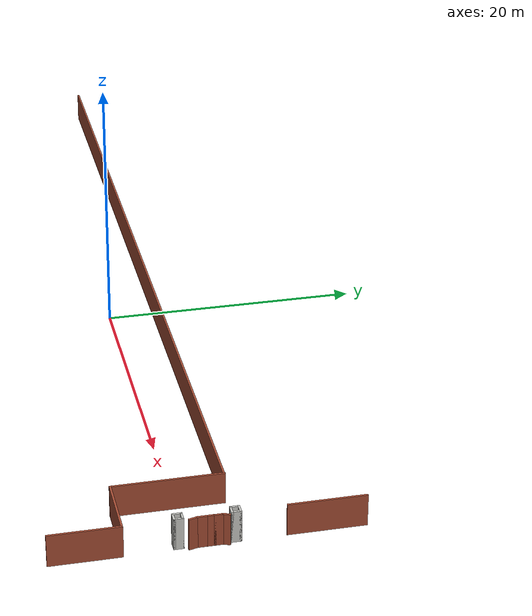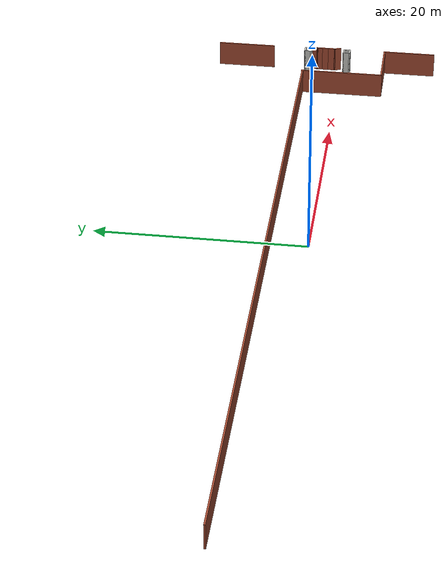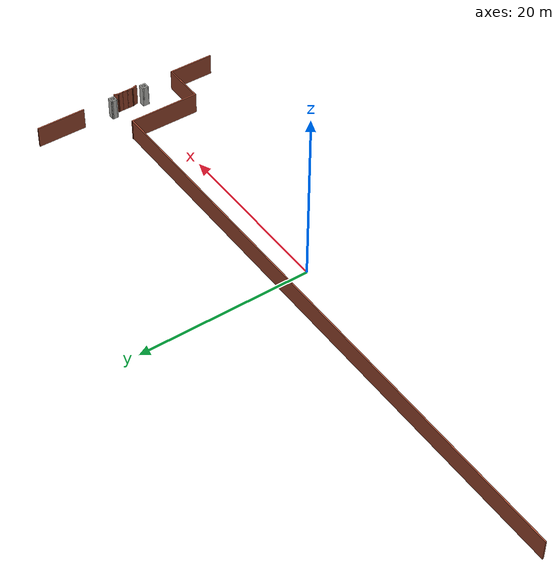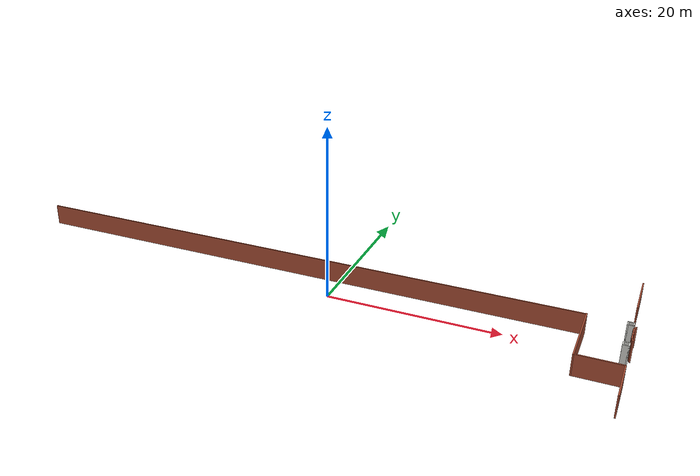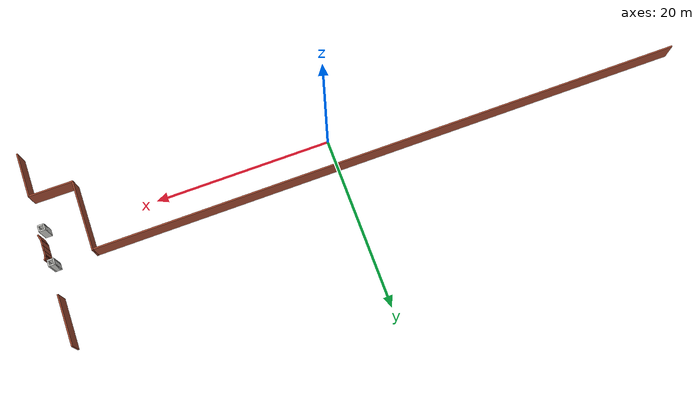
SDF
<sdf version="1.7">
 <model name="Planta1_TD">
  <pose>-6.73335 -7.75071 0 0 -0 0</pose>
  <link name="Wall_177">
   <collision name="Wall_177_Collision">
    <geometry><box><size>68 0.15 2.5</size></box></geometry>
    <pose>0 0 1.25 0 -0 0</pose>
   </collision>
   <visual name="Wall_177_Visual">
    <pose>0 0 1.25 0 -0 0</pose>
    <geometry><box><size>68 0.15 2.5</size></box></geometry>
    <material>
     <script><uri>file://media/materials/scripts/gazebo.material</uri><name>Gazebo/Bricks</name></script>
     <ambient>1 1 1 1</ambient>
    </material>
    <meta><layer>0</layer></meta>
   </visual>
   <pose>0.366626 11.3292 0 0 -0 0</pose>
  </link>
  <link name="Wall_179">
   <collision name="Wall_179_Collision">
    <geometry><box><size>8.25 0.15 2.5</size></box></geometry>
    <pose>0 0 1.25 0 -0 0</pose>
   </collision>
   <visual name="Wall_179_Visual">
    <pose>0 0 1.25 0 -0 0</pose>
    <geometry><box><size>8.25 0.15 2.5</size></box></geometry>
    <material>
     <script><uri>file://media/materials/scripts/gazebo.material</uri><name>Gazebo/Bricks</name></script>
     <ambient>1 1 1 1</ambient>
    </material>
    <meta><layer>0</layer></meta>
   </visual>
   <pose>34.4522 7.31198 0 0 -0 -1.5708</pose>
  </link>
  <link name="Wall_180">
   <collision name="Wall_180_Collision">
    <geometry><box><size>5 0.15 2.5</size></box></geometry>
    <pose>0 0 1.25 0 -0 0</pose>
   </collision>
   <visual name="Wall_180_Visual">
    <pose>0 0 1.25 0 -0 0</pose>
    <geometry><box><size>5 0.15 2.5</size></box></geometry>
    <material>
     <script><uri>file://media/materials/scripts/gazebo.material</uri><name>Gazebo/Bricks</name></script>
     <ambient>1 1 1 1</ambient>
    </material>
    <meta><layer>0</layer></meta>
   </visual>
   <pose>36.8772 3.26199 0 0 -0 0</pose>
  </link>
  <link name="Wall_181">
   <collision name="Wall_181_Collision">
    <geometry><box><size>5.25 0.15 2.5</size></box></geometry>
    <pose>0 0 1.25 0 -0 0</pose>
   </collision>
   <visual name="Wall_181_Visual">
    <pose>0 0 1.25 0 -0 0</pose>
    <geometry><box><size>5.25 0.15 2.5</size></box></geometry>
    <material>
     <script><uri>file://media/materials/scripts/gazebo.material</uri><name>Gazebo/Bricks</name></script>
     <ambient>1 1 1 1</ambient>
    </material>
    <meta><layer>0</layer></meta>
   </visual>
   <pose>39.3022 0.711985 0 0 -0 -1.5708</pose>
  </link>
  <link name="Wall_185">
   <collision name="Wall_185_Collision">
    <geometry><box><size>5.75 0.15 2.5</size></box></geometry>
    <pose>0 0 1.25 0 -0 0</pose>
   </collision>
   <visual name="Wall_185_Visual">
    <pose>0 0 1.25 0 -0 0</pose>
    <geometry><box><size>5.75 0.15 2.5</size></box></geometry>
    <material>
     <script><uri>file://media/materials/scripts/gazebo.material</uri><name>Gazebo/Bricks</name></script>
     <ambient>1 1 1 1</ambient>
    </material>
    <meta><layer>0</layer></meta>
   </visual>
   <pose>39.1365 17.6264 0 0 -0 -1.5708</pose>
  </link>
  <link name="Wall_259">
   <collision name="Wall_259_Collision">
    <geometry><box><size>0.75 0.15 2.5</size></box></geometry>
    <pose>0 0 1.25 0 -0 0</pose>
   </collision>
   <visual name="Wall_259_Visual">
    <pose>0 0 1.25 0 -0 0</pose>
    <geometry><box><size>0.75 0.15 2.5</size></box></geometry>
    <material>
     <script><uri>file://media/materials/scripts/gazebo.material</uri><name>Gazebo/CeilingTiled</name></script>
     <ambient>1 1 1 1</ambient>
    </material>
    <meta><layer>0</layer></meta>
   </visual>
   <pose>38.8926 11.485 0 0 -0 0</pose>
  </link>
  <link name="Wall_260">
   <collision name="Wall_260_Collision">
    <geometry><box><size>0.75 0.15 2.5</size></box></geometry>
    <pose>0 0 1.25 0 -0 0</pose>
   </collision>
   <visual name="Wall_260_Visual">
    <pose>0 0 1.25 0 -0 0</pose>
    <geometry><box><size>0.75 0.15 2.5</size></box></geometry>
    <material>
     <script><uri>file://media/materials/scripts/gazebo.material</uri><name>Gazebo/CeilingTiled</name></script>
     <ambient>1 1 1 1</ambient>
    </material>
    <meta><layer>0</layer></meta>
   </visual>
   <pose>39.1926 11.185 0 0 -0 -1.5708</pose>
  </link>
  <link name="Wall_261">
   <collision name="Wall_261_Collision">
    <geometry><box><size>0.75 0.15 2.5</size></box></geometry>
    <pose>0 0 1.25 0 -0 0</pose>
   </collision>
   <visual name="Wall_261_Visual">
    <pose>0 0 1.25 0 -0 0</pose>
    <geometry><box><size>0.75 0.15 2.5</size></box></geometry>
    <material>
     <script><uri>file://media/materials/scripts/gazebo.material</uri><name>Gazebo/CeilingTiled</name></script>
     <ambient>1 1 1 1</ambient>
    </material>
    <meta><layer>0</layer></meta>
   </visual>
   <pose>38.8926 10.885 0 0 -0 3.14159</pose>
  </link>
  <link name="Wall_262">
   <collision name="Wall_262_Collision">
    <geometry><box><size>0.75 0.15 2.5</size></box></geometry>
    <pose>0 0 1.25 0 -0 0</pose>
   </collision>
   <visual name="Wall_262_Visual">
    <pose>0 0 1.25 0 -0 0</pose>
    <geometry><box><size>0.75 0.15 2.5</size></box></geometry>
    <material>
     <script><uri>file://media/materials/scripts/gazebo.material</uri><name>Gazebo/CeilingTiled</name></script>
     <ambient>1 1 1 1</ambient>
    </material>
    <meta><layer>0</layer></meta>
   </visual>
   <pose>38.5926 11.185 0 0 -0 1.5708</pose>
  </link>
  <link name="Wall_296">
   <collision name="Wall_296_Collision">
    <geometry><box><size>0.75 0.15 2.5</size></box></geometry>
    <pose>0 0 1.25 0 -0 0</pose>
   </collision>
   <visual name="Wall_296_Visual">
    <pose>0 0 1.25 0 -0 0</pose>
    <geometry><box><size>0.75 0.15 2.5</size></box></geometry>
    <material>
     <script><uri>file://media/materials/scripts/gazebo.material</uri><name>Gazebo/CeilingTiled</name></script>
     <ambient>1 1 1 1</ambient>
    </material>
    <meta><layer>0</layer></meta>
   </visual>
   <pose>38.9056 7.4641 0 0 -0 0</pose>
  </link>
  <link name="Wall_297">
   <collision name="Wall_297_Collision">
    <geometry><box><size>0.75 0.15 2.5</size></box></geometry>
    <pose>0 0 1.25 0 -0 0</pose>
   </collision>
   <visual name="Wall_297_Visual">
    <pose>0 0 1.25 0 -0 0</pose>
    <geometry><box><size>0.75 0.15 2.5</size></box></geometry>
    <material>
     <script><uri>file://media/materials/scripts/gazebo.material</uri><name>Gazebo/CeilingTiled</name></script>
     <ambient>1 1 1 1</ambient>
    </material>
    <meta><layer>0</layer></meta>
   </visual>
   <pose>39.2056 7.16409 0 0 -0 -1.5708</pose>
  </link>
  <link name="Wall_298">
   <collision name="Wall_298_Collision">
    <geometry><box><size>0.75 0.15 2.5</size></box></geometry>
    <pose>0 0 1.25 0 -0 0</pose>
   </collision>
   <visual name="Wall_298_Visual">
    <pose>0 0 1.25 0 -0 0</pose>
    <geometry><box><size>0.75 0.15 2.5</size></box></geometry>
    <material>
     <script><uri>file://media/materials/scripts/gazebo.material</uri><name>Gazebo/CeilingTiled</name></script>
     <ambient>1 1 1 1</ambient>
    </material>
    <meta><layer>0</layer></meta>
   </visual>
   <pose>38.9056 6.86409 0 0 -0 3.14159</pose>
  </link>
  <link name="Wall_299">
   <collision name="Wall_299_Collision">
    <geometry><box><size>0.75 0.15 2.5</size></box></geometry>
    <pose>0 0 1.25 0 -0 0</pose>
   </collision>
   <visual name="Wall_299_Visual">
    <pose>0 0 1.25 0 -0 0</pose>
    <geometry><box><size>0.75 0.15 2.5</size></box></geometry>
    <material>
     <script><uri>file://media/materials/scripts/gazebo.material</uri><name>Gazebo/CeilingTiled</name></script>
     <ambient>1 1 1 1</ambient>
    </material>
    <meta><layer>0</layer></meta>
   </visual>
   <pose>38.6056 7.16409 0 0 -0 1.5708</pose>
  </link>
  <link name="Wall_304">
   <collision name="Wall_304_Collision">
    <geometry><box><size>0.75 0.15 2.5</size></box></geometry>
    <pose>0 0 1.25 0 -0 0</pose>
   </collision>
   <visual name="Wall_304_Visual">
    <pose>0 0 1.25 0 -0 0</pose>
    <geometry><box><size>0.75 0.15 2.5</size></box></geometry>
    <material>
     <script><uri>file://media/materials/scripts/gazebo.material</uri><name>Gazebo/Bricks</name></script>
     <ambient>1 1 1 1</ambient>
    </material>
    <meta><layer>0</layer></meta>
   </visual>
   <pose>39.3709 8.1667 0 0 -0 1.8326</pose>
  </link>
  <link name="Wall_305">
   <collision name="Wall_305_Collision">
    <geometry><box><size>0.75 0.15 2.5</size></box></geometry>
    <pose>0 0 1.25 0 -0 0</pose>
   </collision>
   <visual name="Wall_305_Visual">
    <pose>0 0 1.25 0 -0 0</pose>
    <geometry><box><size>0.75 0.15 2.5</size></box></geometry>
    <material>
     <script><uri>file://media/materials/scripts/gazebo.material</uri><name>Gazebo/Bricks</name></script>
     <ambient>1 1 1 1</ambient>
    </material>
    <meta><layer>0</layer></meta>
   </visual>
   <pose>39.2932 8.75648 0 0 -0 1.5708</pose>
  </link>
  <link name="Wall_306">
   <collision name="Wall_306_Collision">
    <geometry><box><size>0.75 0.15 2.5</size></box></geometry>
    <pose>0 0 1.25 0 -0 0</pose>
   </collision>
   <visual name="Wall_306_Visual">
    <pose>0 0 1.25 0 -0 0</pose>
    <geometry><box><size>0.75 0.15 2.5</size></box></geometry>
    <material>
     <script><uri>file://media/materials/scripts/gazebo.material</uri><name>Gazebo/Bricks</name></script>
     <ambient>1 1 1 1</ambient>
    </material>
    <meta><layer>0</layer></meta>
   </visual>
   <pose>39.2932 9.35648 0 0 -0 1.5708</pose>
  </link>
  <link name="Wall_308">
   <collision name="Wall_308_Collision">
    <geometry><box><size>0.75 0.15 2.5</size></box></geometry>
    <pose>0 0 1.25 0 -0 0</pose>
   </collision>
   <visual name="Wall_308_Visual">
    <pose>0 0 1.25 0 -0 0</pose>
    <geometry><box><size>0.75 0.15 2.5</size></box></geometry>
    <material>
     <script><uri>file://media/materials/scripts/gazebo.material</uri><name>Gazebo/Bricks</name></script>
     <ambient>1 1 1 1</ambient>
    </material>
    <meta><layer>0</layer></meta>
   </visual>
   <pose>39.2932 9.95648 0 0 -0 1.5708</pose>
  </link>
  <link name="Wall_318">
   <collision name="Wall_318_Collision">
    <geometry><box><size>0.59488 0.15 2.5</size></box></geometry>
    <pose>0 0 1.25 0 -0 0</pose>
   </collision>
   <visual name="Wall_318_Visual">
    <pose>0 0 1.25 0 -0 0</pose>
    <geometry><box><size>0.59488 0.15 2.5</size></box></geometry>
    <material>
     <script><uri>file://media/materials/scripts/gazebo.material</uri><name>Gazebo/Bricks</name></script>
     <ambient>1 1 1 1</ambient>
    </material>
    <meta><layer>0</layer></meta>
   </visual>
   <pose>39.3731 10.4641 0 0 -0 -1.93806</pose>
  </link>
  <static>1</static>
 </model>
</sdf>
